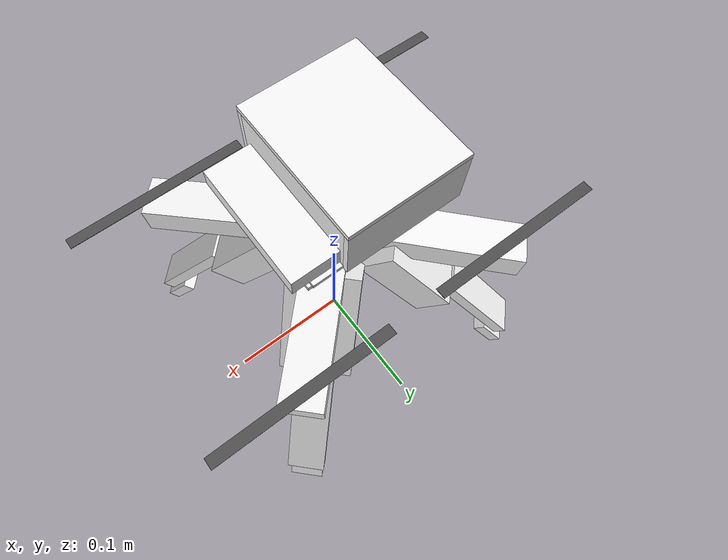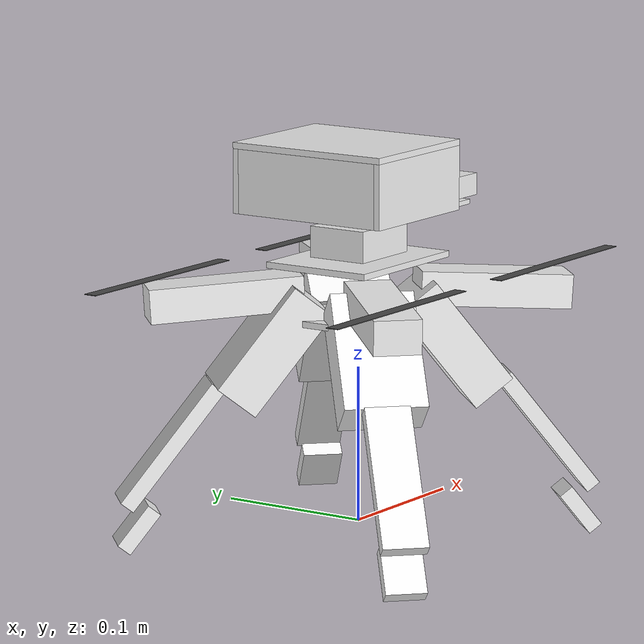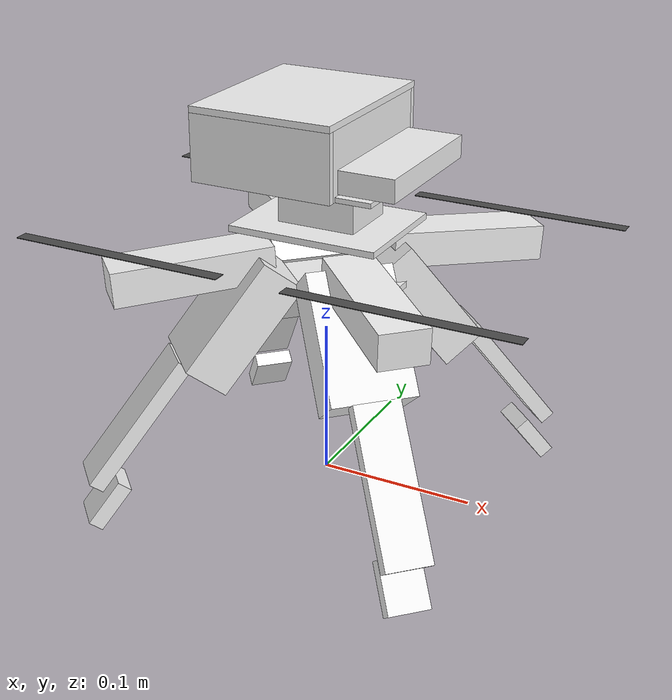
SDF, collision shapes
<?xml version="1.0" encoding="UTF-8"?>
<sdf version='1.9'>
  <model name='uav'>
    <include merge='true'>
      <uri>model://uav_base</uri>
    </include>
    <!-- Preserve the configured motor numbering; KM<0 maps to cw and KM>0 to ccw,
         while |KM|=0.05 maps to the Gazebo momentConstant below. -->
    <plugin filename="gz-sim-multicopter-motor-model-system" name="gz::sim::systems::MulticopterMotorModel">
      <jointName>uav_rotor_0_joint</jointName>
      <linkName>uav_rotor_0</linkName>
      <turningDirection>cw</turningDirection>
      <timeConstantUp>0.0125</timeConstantUp>
      <timeConstantDown>0.025</timeConstantDown>
      <maxRotVelocity>1000.0</maxRotVelocity>
      <motorConstant>8.54858e-06</motorConstant>
      <momentConstant>0.05</momentConstant>
      <commandSubTopic>command/motor_speed</commandSubTopic>
      <motorNumber>0</motorNumber>
      <rotorDragCoefficient>8.06428e-05</rotorDragCoefficient>
      <rollingMomentCoefficient>1e-06</rollingMomentCoefficient>
      <rotorVelocitySlowdownSim>10</rotorVelocitySlowdownSim>
      <motorType>velocity</motorType>
    </plugin>
    <plugin filename="gz-sim-multicopter-motor-model-system" name="gz::sim::systems::MulticopterMotorModel">
      <jointName>uav_rotor_1_joint</jointName>
      <linkName>uav_rotor_1</linkName>
      <turningDirection>cw</turningDirection>
      <timeConstantUp>0.0125</timeConstantUp>
      <timeConstantDown>0.025</timeConstantDown>
      <maxRotVelocity>1000.0</maxRotVelocity>
      <motorConstant>8.54858e-06</motorConstant>
      <momentConstant>0.05</momentConstant>
      <commandSubTopic>command/motor_speed</commandSubTopic>
      <motorNumber>1</motorNumber>
      <rotorDragCoefficient>8.06428e-05</rotorDragCoefficient>
      <rollingMomentCoefficient>1e-06</rollingMomentCoefficient>
      <rotorVelocitySlowdownSim>10</rotorVelocitySlowdownSim>
      <motorType>velocity</motorType>
    </plugin>
    <plugin filename="gz-sim-multicopter-motor-model-system" name="gz::sim::systems::MulticopterMotorModel">
      <jointName>uav_rotor_2_joint</jointName>
      <linkName>uav_rotor_2</linkName>
      <turningDirection>ccw</turningDirection>
      <timeConstantUp>0.0125</timeConstantUp>
      <timeConstantDown>0.025</timeConstantDown>
      <maxRotVelocity>1000.0</maxRotVelocity>
      <motorConstant>8.54858e-06</motorConstant>
      <momentConstant>0.05</momentConstant>
      <commandSubTopic>command/motor_speed</commandSubTopic>
      <motorNumber>2</motorNumber>
      <rotorDragCoefficient>8.06428e-05</rotorDragCoefficient>
      <rollingMomentCoefficient>1e-06</rollingMomentCoefficient>
      <rotorVelocitySlowdownSim>10</rotorVelocitySlowdownSim>
      <motorType>velocity</motorType>
    </plugin>
    <plugin filename="gz-sim-multicopter-motor-model-system" name="gz::sim::systems::MulticopterMotorModel">
      <jointName>uav_rotor_3_joint</jointName>
      <linkName>uav_rotor_3</linkName>
      <turningDirection>ccw</turningDirection>
      <timeConstantUp>0.0125</timeConstantUp>
      <timeConstantDown>0.025</timeConstantDown>
      <maxRotVelocity>1000.0</maxRotVelocity>
      <motorConstant>8.54858e-06</motorConstant>
      <momentConstant>0.05</momentConstant>
      <commandSubTopic>command/motor_speed</commandSubTopic>
      <motorNumber>3</motorNumber>
      <rotorDragCoefficient>8.06428e-05</rotorDragCoefficient>
      <rollingMomentCoefficient>1e-06</rollingMomentCoefficient>
      <rotorVelocitySlowdownSim>10</rotorVelocitySlowdownSim>
      <motorType>velocity</motorType>
    </plugin>
  </model>
</sdf>

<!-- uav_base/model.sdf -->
<sdf version='1.9'>
  <model name='uav_base'>
    <pose>0 0 0.12 0 0 0</pose>
    <self_collide>false</self_collide>
    <static>false</static>
    <link name="uav_base_link">
      <inertial>
        <mass>1.19196153846</mass>
        <inertia>
          <ixx>0.002926086497</ixx>
          <ixy>0</ixy>
          <ixz>0</ixz>
          <iyy>0.002922870097</iyy>
          <iyz>0</iyz>
          <izz>0.004866464599</izz>
        </inertia>
      </inertial>
      <gravity>true</gravity>
      <velocity_decay/>
      <visual name="uav_base_link_visual">
        <pose>0 0 0 0 0 0</pose>
        <geometry>
          <mesh>
            <scale>1 1 1</scale>
            <uri>model://uav_base/meshes/dj250_airframe.dae</uri>
          </mesh>
        </geometry>
      </visual>
      <visual name="motor_2306_base_0">
        <pose>0.09 -0.09 0.0325 0 0 -0.45</pose>
        <geometry>
          <mesh>
            <scale>1 1 1</scale>
            <uri>model://uav_base/meshes/motor_2306_base.dae</uri>
          </mesh>
        </geometry>
      </visual>
      <visual name="motor_2306_base_1">
        <pose>-0.09 0.09 0.0325 0 0 -0.45</pose>
        <geometry>
          <mesh>
            <scale>1 1 1</scale>
            <uri>model://uav_base/meshes/motor_2306_base.dae</uri>
          </mesh>
        </geometry>
      </visual>
      <visual name="motor_2306_base_2">
        <pose>0.09 0.09 0.0325 0 0 -0.45</pose>
        <geometry>
          <mesh>
            <scale>1 1 1</scale>
            <uri>model://uav_base/meshes/motor_2306_base.dae</uri>
          </mesh>
        </geometry>
      </visual>
      <visual name="motor_2306_base_3">
        <pose>-0.09 -0.09 0.0325 0 0 -0.45</pose>
        <geometry>
          <mesh>
            <scale>1 1 1</scale>
            <uri>model://uav_base/meshes/motor_2306_base.dae</uri>
          </mesh>
        </geometry>
      </visual>
      <visual name="flight_controller_front_marker">
        <pose>0.0235 0.0005 0.0215 1 0 1.57</pose>
        <cast_shadows>false</cast_shadows>
        <geometry>
          <plane>
            <normal>0 0 1</normal>
            <size>0.0065 0.0035</size>
          </plane>
        </geometry>
        <material>
          <ambient>0.85 0.85 0.85 1</ambient>
          <diffuse>0.95 0.95 0.95 1</diffuse>
          <specular>0.2 0.2 0.2 1</specular>
        </material>
      </visual>
      <visual name="flight_controller_top_marker">
        <pose>-0.0115 0 0.02575 0 0 -1.57</pose>
        <cast_shadows>false</cast_shadows>
        <geometry>
          <plane>
            <normal>0 0 1</normal>
            <size>0.0065 0.0035</size>
          </plane>
        </geometry>
        <material>
          <ambient>0.85 0.85 0.85 1</ambient>
          <diffuse>0.95 0.95 0.95 1</diffuse>
          <specular>0.2 0.2 0.2 1</specular>
        </material>
      </visual>
      <visual name="vehicle_top_marker">
        <pose>-0.015 0 0.02575 0 0 -1.57</pose>
        <cast_shadows>false</cast_shadows>
        <geometry>
          <plane>
            <normal>0 0 1</normal>
            <size>0.016 0.0017</size>
          </plane>
        </geometry>
        <material>
          <ambient>0.85 0.85 0.85 1</ambient>
          <diffuse>0.95 0.95 0.95 1</diffuse>
          <specular>0.2 0.2 0.2 1</specular>
        </material>
      </visual>
      <collision name="uav_base_link_collision_body_lower">
        <pose>0.00123 0.00075 0.01450 0 0 0</pose>
        <geometry>
          <box>
            <size>0.096 0.074 0.004</size>
          </box>
        </geometry>
        <surface>
          <contact>
            <ode>
              <min_depth>0.001</min_depth>
              <max_vel>0</max_vel>
            </ode>
          </contact>
          <friction>
            <ode/>
          </friction>
        </surface>
      </collision>
      <collision name="uav_base_link_collision_body_mid">
        <pose>0.00123 0.00075 0.04950 0 0 0</pose>
        <geometry>
          <box>
            <size>0.096 0.074 0.004</size>
          </box>
        </geometry>
        <surface>
          <contact>
            <ode>
              <min_depth>0.001</min_depth>
              <max_vel>0</max_vel>
            </ode>
          </contact>
          <friction>
            <ode/>
          </friction>
        </surface>
      </collision>
      <collision name="uav_base_link_collision_body_top">
        <pose>0.00123 0.00075 0.08400 0 0 0</pose>
        <geometry>
          <box>
            <size>0.104 0.100 0.003</size>
          </box>
        </geometry>
        <surface>
          <contact>
            <ode>
              <min_depth>0.001</min_depth>
              <max_vel>0</max_vel>
            </ode>
          </contact>
          <friction>
            <ode/>
          </friction>
        </surface>
      </collision>
      <collision name="uav_base_link_collision_body_core">
        <pose>0.00250 0.00118 0.06250 0 0 0</pose>
        <geometry>
          <box>
            <size>0.050 0.040 0.020</size>
          </box>
        </geometry>
        <surface>
          <contact>
            <ode>
              <min_depth>0.001</min_depth>
              <max_vel>0</max_vel>
            </ode>
          </contact>
          <friction>
            <ode/>
          </friction>
        </surface>
      </collision>
      <collision name="uav_base_link_collision_canopy_top">
        <pose>-0.01384 -0.00052 0.12550 0 0 0</pose>
        <geometry>
          <box>
            <size>0.090 0.110 0.004</size>
          </box>
        </geometry>
        <surface>
          <contact>
            <ode>
              <min_depth>0.001</min_depth>
              <max_vel>0</max_vel>
            </ode>
          </contact>
          <friction>
            <ode/>
          </friction>
        </surface>
      </collision>
      <collision name="uav_base_link_collision_canopy_left">
        <pose>-0.01384 0.05248 0.10300 0 0 0</pose>
        <geometry>
          <box>
            <size>0.090 0.004 0.041</size>
          </box>
        </geometry>
        <surface>
          <contact>
            <ode>
              <min_depth>0.001</min_depth>
              <max_vel>0</max_vel>
            </ode>
          </contact>
          <friction>
            <ode/>
          </friction>
        </surface>
      </collision>
      <collision name="uav_base_link_collision_canopy_right">
        <pose>-0.01384 -0.05352 0.10300 0 0 0</pose>
        <geometry>
          <box>
            <size>0.090 0.004 0.041</size>
          </box>
        </geometry>
        <surface>
          <contact>
            <ode>
              <min_depth>0.001</min_depth>
              <max_vel>0</max_vel>
            </ode>
          </contact>
          <friction>
            <ode/>
          </friction>
        </surface>
      </collision>
      <collision name="uav_base_link_collision_canopy_front">
        <pose>0.02916 -0.00052 0.10300 0 0 0</pose>
        <geometry>
          <box>
            <size>0.004 0.102 0.041</size>
          </box>
        </geometry>
        <surface>
          <contact>
            <ode>
              <min_depth>0.001</min_depth>
              <max_vel>0</max_vel>
            </ode>
          </contact>
          <friction>
            <ode/>
          </friction>
        </surface>
      </collision>
      <collision name="uav_base_link_collision_canopy_rear">
        <pose>-0.05684 -0.00052 0.10300 0 0 0</pose>
        <geometry>
          <box>
            <size>0.004 0.102 0.041</size>
          </box>
        </geometry>
        <surface>
          <contact>
            <ode>
              <min_depth>0.001</min_depth>
              <max_vel>0</max_vel>
            </ode>
          </contact>
          <friction>
            <ode/>
          </friction>
        </surface>
      </collision>
      <collision name="uav_base_link_collision_body_front_bridge">
        <pose>0.04702 0.00075 0.09332 0 0 -1.571</pose>
        <geometry>
          <box>
            <size>0.094 0.038 0.014</size>
          </box>
        </geometry>
        <surface>
          <contact>
            <ode>
              <min_depth>0.001</min_depth>
              <max_vel>0</max_vel>
            </ode>
          </contact>
          <friction>
            <ode/>
          </friction>
        </surface>
      </collision>
      <collision name="uav_base_link_collision_arm_front_left">
        <pose>0.06297 0.06099 0.02936 0 0.058 0.785</pose>
        <geometry>
          <box>
            <size>0.098 0.030 0.022</size>
          </box>
        </geometry>
        <surface>
          <contact>
            <ode>
              <min_depth>0.001</min_depth>
              <max_vel>0</max_vel>
            </ode>
          </contact>
          <friction>
            <ode/>
          </friction>
        </surface>
      </collision>
      <collision name="uav_base_link_collision_arm_rear_left">
        <pose>-0.06043 0.06102 0.02936 0 0.058 2.356</pose>
        <geometry>
          <box>
            <size>0.098 0.030 0.022</size>
          </box>
        </geometry>
        <surface>
          <contact>
            <ode>
              <min_depth>0.001</min_depth>
              <max_vel>0</max_vel>
            </ode>
          </contact>
          <friction>
            <ode/>
          </friction>
        </surface>
      </collision>
      <collision name="uav_base_link_collision_arm_rear_right">
        <pose>-0.06047 -0.05895 0.02936 0 0.058 -2.356</pose>
        <geometry>
          <box>
            <size>0.098 0.030 0.022</size>
          </box>
        </geometry>
        <surface>
          <contact>
            <ode>
              <min_depth>0.001</min_depth>
              <max_vel>0</max_vel>
            </ode>
          </contact>
          <friction>
            <ode/>
          </friction>
        </surface>
      </collision>
      <collision name="uav_base_link_collision_arm_front_right">
        <pose>0.06174 -0.06122 0.02936 0 0.058 -0.785</pose>
        <geometry>
          <box>
            <size>0.098 0.030 0.022</size>
          </box>
        </geometry>
        <surface>
          <contact>
            <ode>
              <min_depth>0.001</min_depth>
              <max_vel>0</max_vel>
            </ode>
          </contact>
          <friction>
            <ode/>
          </friction>
        </surface>
      </collision>
      <collision name="uav_base_link_collision_leg_front_left_upper">
        <pose>0.04159 0.04045 -0.00324 0 0.906 0.785</pose>
        <geometry>
          <box>
            <size>0.080 0.053 0.030</size>
          </box>
        </geometry>
        <surface>
          <contact>
            <ode>
              <min_depth>0.001</min_depth>
              <max_vel>0</max_vel>
            </ode>
          </contact>
          <friction>
            <ode/>
          </friction>
        </surface>
      </collision>
      <collision name="uav_base_link_collision_leg_front_left_mid">
        <pose>0.08659 0.08545 -0.06441 0 0.906 0.785</pose>
        <geometry>
          <box>
            <size>0.095 0.029 0.010</size>
          </box>
        </geometry>
        <surface>
          <contact>
            <ode>
              <min_depth>0.001</min_depth>
              <max_vel>0</max_vel>
            </ode>
          </contact>
          <friction>
            <ode/>
          </friction>
        </surface>
      </collision>
      <collision name="uav_base_link_collision_leg_front_left_foot">
        <pose>0.10177 0.10063 -0.11708 0 0.906 0.785</pose>
        <geometry>
          <box>
            <size>0.032 0.026 0.010</size>
          </box>
        </geometry>
        <surface>
          <contact>
            <ode>
              <min_depth>0.001</min_depth>
              <max_vel>0</max_vel>
            </ode>
          </contact>
          <friction>
            <ode/>
          </friction>
        </surface>
      </collision>
      <collision name="uav_base_link_collision_leg_front_right_upper">
        <pose>0.04101 -0.04131 -0.00324 0 0.906 -0.785</pose>
        <geometry>
          <box>
            <size>0.080 0.053 0.030</size>
          </box>
        </geometry>
        <surface>
          <contact>
            <ode>
              <min_depth>0.001</min_depth>
              <max_vel>0</max_vel>
            </ode>
          </contact>
          <friction>
            <ode/>
          </friction>
        </surface>
      </collision>
      <collision name="uav_base_link_collision_leg_front_right_mid">
        <pose>0.08601 -0.08631 -0.06441 0 0.906 -0.785</pose>
        <geometry>
          <box>
            <size>0.095 0.029 0.010</size>
          </box>
        </geometry>
        <surface>
          <contact>
            <ode>
              <min_depth>0.001</min_depth>
              <max_vel>0</max_vel>
            </ode>
          </contact>
          <friction>
            <ode/>
          </friction>
        </surface>
      </collision>
      <collision name="uav_base_link_collision_leg_front_right_foot">
        <pose>0.10119 -0.10149 -0.11708 0 0.906 -0.785</pose>
        <geometry>
          <box>
            <size>0.032 0.026 0.010</size>
          </box>
        </geometry>
        <surface>
          <contact>
            <ode>
              <min_depth>0.001</min_depth>
              <max_vel>0</max_vel>
            </ode>
          </contact>
          <friction>
            <ode/>
          </friction>
        </surface>
      </collision>
      <collision name="uav_base_link_collision_leg_rear_right_upper">
        <pose>-0.04159 -0.04138 -0.00324 0 0.906 -2.356</pose>
        <geometry>
          <box>
            <size>0.080 0.053 0.030</size>
          </box>
        </geometry>
        <surface>
          <contact>
            <ode>
              <min_depth>0.001</min_depth>
              <max_vel>0</max_vel>
            </ode>
          </contact>
          <friction>
            <ode/>
          </friction>
        </surface>
      </collision>
      <collision name="uav_base_link_collision_leg_rear_right_mid">
        <pose>-0.08659 -0.08638 -0.06441 0 0.906 -2.356</pose>
        <geometry>
          <box>
            <size>0.095 0.029 0.010</size>
          </box>
        </geometry>
        <surface>
          <contact>
            <ode>
              <min_depth>0.001</min_depth>
              <max_vel>0</max_vel>
            </ode>
          </contact>
          <friction>
            <ode/>
          </friction>
        </surface>
      </collision>
      <collision name="uav_base_link_collision_leg_rear_right_foot">
        <pose>-0.10177 -0.10156 -0.11708 0 0.906 -2.356</pose>
        <geometry>
          <box>
            <size>0.032 0.026 0.010</size>
          </box>
        </geometry>
        <surface>
          <contact>
            <ode>
              <min_depth>0.001</min_depth>
              <max_vel>0</max_vel>
            </ode>
          </contact>
          <friction>
            <ode/>
          </friction>
        </surface>
      </collision>
      <collision name="uav_base_link_collision_leg_rear_left_upper">
        <pose>-0.04010 0.04138 -0.00324 0 0.906 2.356</pose>
        <geometry>
          <box>
            <size>0.080 0.053 0.030</size>
          </box>
        </geometry>
        <surface>
          <contact>
            <ode>
              <min_depth>0.001</min_depth>
              <max_vel>0</max_vel>
            </ode>
          </contact>
          <friction>
            <ode/>
          </friction>
        </surface>
      </collision>
      <collision name="uav_base_link_collision_leg_rear_left_mid">
        <pose>-0.08511 0.08638 -0.06441 0 0.906 2.356</pose>
        <geometry>
          <box>
            <size>0.095 0.029 0.010</size>
          </box>
        </geometry>
        <surface>
          <contact>
            <ode>
              <min_depth>0.001</min_depth>
              <max_vel>0</max_vel>
            </ode>
          </contact>
          <friction>
            <ode/>
          </friction>
        </surface>
      </collision>
      <collision name="uav_base_link_collision_leg_rear_left_foot">
        <pose>-0.10028 0.10156 -0.11708 0 0.906 2.356</pose>
        <geometry>
          <box>
            <size>0.032 0.026 0.010</size>
          </box>
        </geometry>
        <surface>
          <contact>
            <ode>
              <min_depth>0.001</min_depth>
              <max_vel>0</max_vel>
            </ode>
          </contact>
          <friction>
            <ode/>
          </friction>
        </surface>
      </collision>
      <sensor name="uav_air_pressure_sensor" type="air_pressure">
        <always_on>1</always_on>
        <update_rate>50</update_rate>
        <air_pressure>
          <pressure>
            <noise type="gaussian">
              <mean>0</mean>
              <stddev>0.01</stddev>
            </noise>
          </pressure>
        </air_pressure>
      </sensor>
      <sensor name="uav_imu_sensor" type="imu">
        <always_on>1</always_on>
        <update_rate>250</update_rate>
        <imu>
          <angular_velocity>
            <x>
              <noise type="gaussian">
                <mean>0</mean>
                <stddev>0.00018665</stddev>
                <dynamic_bias_stddev>3.8785e-05</dynamic_bias_stddev>
                <dynamic_bias_correlation_time>1000</dynamic_bias_correlation_time>
              </noise>
            </x>
            <y>
              <noise type="gaussian">
                <mean>0</mean>
                <stddev>0.00018665</stddev>
                <dynamic_bias_stddev>3.8785e-05</dynamic_bias_stddev>
                <dynamic_bias_correlation_time>1000</dynamic_bias_correlation_time>
              </noise>
            </y>
            <z>
              <noise type="gaussian">
                <mean>0</mean>
                <stddev>0.00018665</stddev>
                <dynamic_bias_stddev>3.8785e-05</dynamic_bias_stddev>
                <dynamic_bias_correlation_time>1000</dynamic_bias_correlation_time>
              </noise>
            </z>
          </angular_velocity>
          <linear_acceleration>
            <x>
              <noise type="gaussian">
                <mean>0</mean>
                <stddev>0.00186</stddev>
                <dynamic_bias_stddev>0.006</dynamic_bias_stddev>
                <dynamic_bias_correlation_time>300</dynamic_bias_correlation_time>
              </noise>
            </x>
            <y>
              <noise type="gaussian">
                <mean>0</mean>
                <stddev>0.00186</stddev>
                <dynamic_bias_stddev>0.006</dynamic_bias_stddev>
                <dynamic_bias_correlation_time>300</dynamic_bias_correlation_time>
              </noise>
            </y>
            <z>
              <noise type="gaussian">
                <mean>0</mean>
                <stddev>0.00186</stddev>
                <dynamic_bias_stddev>0.006</dynamic_bias_stddev>
                <dynamic_bias_correlation_time>300</dynamic_bias_correlation_time>
              </noise>
            </z>
          </linear_acceleration>
        </imu>
      </sensor>
      <sensor name="uav_navsat_sensor" type="navsat">
        <always_on>1</always_on>
        <update_rate>30</update_rate>
      </sensor>
      <visual name="optical_flow_module_visual">
        <pose>0.005 0.05 0.0123 0 0 0</pose>
        <geometry>
          <box>
            <size>0.030 0.015 0.005</size>
          </box>
        </geometry>
        <material>
          <ambient>0.04 0.04 0.04 1</ambient>
          <diffuse>0.08 0.08 0.08 1</diffuse>
          <specular>0.15 0.15 0.15 1</specular>
        </material>
      </visual>
      <visual name="optical_flow_module_lens_window">
        <pose>0.012 0.05 0.0095 0 0 0</pose>
        <geometry>
          <box>
            <size>0.008 0.008 0.0008</size>
          </box>
        </geometry>
        <material>
          <ambient>0.02 0.03 0.05 1</ambient>
          <diffuse>0.04 0.06 0.08 1</diffuse>
          <specular>0.25 0.25 0.25 1</specular>
        </material>
      </visual>
      <visual name="optical_flow_module_range_window">
        <pose>-0.008 0.05 0.0095 0 0 0</pose>
        <geometry>
          <cylinder>
            <radius>0.0025</radius>
            <length>0.0008</length>
          </cylinder>
        </geometry>
        <material>
          <ambient>0.08 0.08 0.08 1</ambient>
          <diffuse>0.12 0.12 0.12 1</diffuse>
          <specular>0.20 0.20 0.20 1</specular>
        </material>
      </visual>
      <sensor name="uav_optical_flow_camera" type="camera">
        <always_on>1</always_on>
        <update_rate>30</update_rate>
        <pose>0.005 0.05 0.0098 0 1.570796327 0</pose>
        <camera>
          <horizontal_fov>0.25</horizontal_fov>
          <image>
            <width>64</width>
            <height>64</height>
            <format>R8G8B8</format>
          </image>
          <clip>
            <near>0.03</near>
            <far>20.0</far>
          </clip>
        </camera>
        <visualize>false</visualize>
      </sensor>
      <sensor name="uav_optical_flow_range" type="gpu_lidar">
        <always_on>1</always_on>
        <update_rate>30</update_rate>
        <pose>0.005 0.05 0.0098 0 -1.570796327 0</pose>
        <lidar>
          <scan>
            <horizontal>
              <samples>1</samples>
              <resolution>1</resolution>
              <min_angle>0.0</min_angle>
              <max_angle>0.0</max_angle>
            </horizontal>
            <vertical>
              <samples>1</samples>
              <resolution>1</resolution>
              <min_angle>0.0</min_angle>
              <max_angle>0.0</max_angle>
            </vertical>
          </scan>
          <range>
            <min>0.08</min>
            <max>8.0</max>
            <resolution>0.01</resolution>
          </range>
        </lidar>
        <visualize>false</visualize>
      </sensor>
      <visual name="uav_mono_camera_visual">
        <pose>0.0903 0 0.0098 0 1.570796327 0</pose>
        <geometry>
          <box>
            <size>0.008 0.018 0.014</size>
          </box>
        </geometry>
        <material>
          <ambient>0.05 0.05 0.05 1</ambient>
          <diffuse>0.08 0.08 0.08 1</diffuse>
          <specular>0.2 0.2 0.2 1</specular>
        </material>
      </visual>
      <sensor name="uav_mono_camera" type="camera">
        <always_on>1</always_on>
        <update_rate>60</update_rate>
        <pose>0.0903 0 0.0098 0 1.570796327 0</pose>
        <camera>
          <horizontal_fov>1.3962634</horizontal_fov>
          <image>
            <width>1280</width>
            <height>720</height>
            <format>L8</format>
          </image>
          <clip>
            <near>0.05</near>
            <far>100</far>
          </clip>
        </camera>
        <visualize>false</visualize>
      </sensor>
      <visual name="uav_stereo_depth_camera_visual">
        <pose>0.0452 0 0.0918 0 0 0</pose>
        <geometry>
          <mesh>
            <scale>1 1 1</scale>
            <uri>model://uav_base/meshes/camera_orbbec_gemini336_link.stl</uri>
          </mesh>
        </geometry>
        <material>
          <ambient>0.05 0.05 0.05 1</ambient>
          <diffuse>0.08 0.08 0.08 1</diffuse>
          <specular>0.2 0.2 0.2 1</specular>
        </material>
      </visual>
      <sensor name="uav_stereo_depth_camera_rgb" type="camera">
        <always_on>1</always_on>
        <update_rate>30</update_rate>
        <pose>0.0503 0 0.1043 0 0 0</pose>
        <camera>
          <horizontal_fov>1.500983157</horizontal_fov>
          <image>
            <width>1920</width>
            <height>1080</height>
            <format>R8G8B8</format>
          </image>
          <clip>
            <near>0.10</near>
            <far>20.0</far>
          </clip>
        </camera>
        <visualize>false</visualize>
      </sensor>
      <sensor name="uav_stereo_depth_camera_depth" type="depth_camera">
        <always_on>1</always_on>
        <update_rate>30</update_rate>
        <pose>0.0503 0 0.1043 0 0 0</pose>
        <camera>
          <horizontal_fov>1.570796327</horizontal_fov>
          <image>
            <width>1280</width>
            <height>800</height>
            <format>R_FLOAT32</format>
          </image>
          <clip>
            <near>0.10</near>
            <far>20.0</far>
          </clip>
        </camera>
        <visualize>false</visualize>
      </sensor>
    </link>
    <!-- Rotor links keep the configured ordering after FRD->FLU conversion.
         A -Z spin axis in FRD maps to a +Z spin axis in Gazebo FLU. -->
    <link name="uav_rotor_0">
      <gravity>true</gravity>
      <self_collide>false</self_collide>
      <velocity_decay/>
      <pose>0.09 -0.09 0.033 0 0 0</pose>
      <inertial>
          <mass>0.002009615385</mass>
          <inertia>
            <ixx>0.00000001202</ixx>
            <iyy>0.00000081612</iyy>
            <izz>0.000000828081</izz>
          </inertia>
        </inertial>
      <visual name="uav_rotor_0_visual">
        <pose>0 0 0.01 0 0 0</pose>
        <geometry>
          <mesh>
            <scale>0.001 0.001 0.001</scale>
            <uri>model://uav_base/meshes/propeller_5x3.stl</uri>
          </mesh>
        </geometry>
        <material>
          <script>
            <name>Gazebo/DarkGrey</name>
            <uri>file://media/materials/scripts/gazebo.material</uri>
          </script>
        </material>
      </visual>
      <visual name="uav_rotor_0_visual_motor_bell">
        <pose>0 0 0 0 0 0</pose>
        <geometry>
          <mesh>
            <scale>0.5 0.5 0.5</scale>
            <uri>model://uav_base/meshes/motor_2306_bell.dae</uri>
          </mesh>
        </geometry>
      </visual>
      <collision name="uav_rotor_0_collision">
        <pose>0 0 0.01 0 0 0</pose>
        <geometry>
          <box>
            <size>0.139615384615 0.008461538462 0.000423076923</size>
          </box>
        </geometry>
        <surface>
          <contact>
            <ode>
              <min_depth>0.001</min_depth>
              <max_vel>0</max_vel>
            </ode>
          </contact>
          <friction>
            <ode/>
          </friction>
        </surface>
      </collision>
    </link>
    <joint name="uav_rotor_0_joint" type="revolute">
      <parent>uav_base_link</parent>
      <child>uav_rotor_0</child>
      <axis>
        <xyz>0 0 1</xyz>
        <limit>
          <lower>-1e+16</lower>
          <upper>1e+16</upper>
        </limit>
        <dynamics>
          <spring_reference>0</spring_reference>
          <spring_stiffness>0</spring_stiffness>
        </dynamics>
      </axis>
    </joint>
    <link name="uav_rotor_1">
      <gravity>true</gravity>
      <self_collide>false</self_collide>
      <velocity_decay/>
      <pose>-0.09 0.09 0.033 0 0 0</pose>
      <inertial>
          <mass>0.002009615385</mass>
          <inertia>
            <ixx>0.00000001202</ixx>
            <iyy>0.00000081612</iyy>
            <izz>0.000000828081</izz>
          </inertia>
        </inertial>
      <visual name="uav_rotor_1_visual">
        <pose>0 0 0.01 0 0 0</pose>
        <geometry>
          <mesh>
            <scale>0.001 0.001 0.001</scale>
            <uri>model://uav_base/meshes/propeller_5x3.stl</uri>
          </mesh>
        </geometry>
        <material>
          <script>
            <name>Gazebo/DarkGrey</name>
            <uri>file://media/materials/scripts/gazebo.material</uri>
          </script>
        </material>
      </visual>
      <visual name="uav_rotor_1_visual_motor_bell">
        <pose>0 0 0 0 0 0</pose>
        <geometry>
          <mesh>
            <scale>0.5 0.5 0.5</scale>
            <uri>model://uav_base/meshes/motor_2306_bell.dae</uri>
          </mesh>
        </geometry>
      </visual>
      <collision name="uav_rotor_1_collision">
        <pose>0 0 0.01 0 0 0</pose>
        <geometry>
          <box>
            <size>0.139615384615 0.008461538462 0.000423076923</size>
          </box>
        </geometry>
        <surface>
          <contact>
            <ode>
              <min_depth>0.001</min_depth>
              <max_vel>0</max_vel>
            </ode>
          </contact>
          <friction>
            <ode/>
          </friction>
        </surface>
      </collision>
    </link>
    <joint name="uav_rotor_1_joint" type="revolute">
      <parent>uav_base_link</parent>
      <child>uav_rotor_1</child>
      <axis>
        <xyz>0 0 1</xyz>
        <limit>
          <lower>-1e+16</lower>
          <upper>1e+16</upper>
        </limit>
        <dynamics>
          <spring_reference>0</spring_reference>
          <spring_stiffness>0</spring_stiffness>
        </dynamics>
      </axis>
    </joint>
    <link name="uav_rotor_2">
      <gravity>true</gravity>
      <self_collide>false</self_collide>
      <velocity_decay/>
      <pose>0.09 0.09 0.033 0 0 0</pose>
      <inertial>
          <mass>0.002009615385</mass>
          <inertia>
            <ixx>0.00000001202</ixx>
            <iyy>0.00000081612</iyy>
            <izz>0.000000828081</izz>
          </inertia>
        </inertial>
      <visual name="uav_rotor_2_visual">
        <pose>0 0 0.01 0 0 0</pose>
        <geometry>
          <mesh>
            <scale>0.001 0.001 0.001</scale>
            <uri>model://uav_base/meshes/propeller_5x3.stl</uri>
          </mesh>
        </geometry>
        <material>
          <script>
            <name>Gazebo/DarkGrey</name>
            <uri>file://media/materials/scripts/gazebo.material</uri>
          </script>
        </material>
      </visual>
      <visual name="uav_rotor_2_visual_motor_bell">
        <pose>0 0 0 0 0 0</pose>
        <geometry>
          <mesh>
            <scale>0.5 0.5 0.5</scale>
            <uri>model://uav_base/meshes/motor_2306_bell.dae</uri>
          </mesh>
        </geometry>
      </visual>
      <collision name="uav_rotor_2_collision">
        <pose>0 0 0.01 0 0 0</pose>
        <geometry>
          <box>
            <size>0.139615384615 0.008461538462 0.000423076923</size>
          </box>
        </geometry>
        <surface>
          <contact>
            <ode>
              <min_depth>0.001</min_depth>
              <max_vel>0</max_vel>
            </ode>
          </contact>
          <friction>
            <ode/>
          </friction>
        </surface>
      </collision>
    </link>
    <joint name="uav_rotor_2_joint" type="revolute">
      <parent>uav_base_link</parent>
      <child>uav_rotor_2</child>
      <axis>
        <xyz>0 0 1</xyz>
        <limit>
          <lower>-1e+16</lower>
          <upper>1e+16</upper>
        </limit>
        <dynamics>
          <spring_reference>0</spring_reference>
          <spring_stiffness>0</spring_stiffness>
        </dynamics>
      </axis>
    </joint>
    <link name="uav_rotor_3">
      <gravity>true</gravity>
      <self_collide>false</self_collide>
      <velocity_decay/>
      <pose>-0.09 -0.09 0.033 0 0 0</pose>
      <inertial>
          <mass>0.002009615385</mass>
          <inertia>
            <ixx>0.00000001202</ixx>
            <iyy>0.00000081612</iyy>
            <izz>0.000000828081</izz>
          </inertia>
        </inertial>
      <visual name="uav_rotor_3_visual">
        <pose>0 0 0.01 0 0 0</pose>
        <geometry>
          <mesh>
            <scale>0.001 0.001 0.001</scale>
            <uri>model://uav_base/meshes/propeller_5x3.stl</uri>
          </mesh>
        </geometry>
        <material>
          <script>
            <name>Gazebo/DarkGrey</name>
            <uri>file://media/materials/scripts/gazebo.material</uri>
          </script>
        </material>
      </visual>
      <visual name="uav_rotor_3_visual_motor_bell">
        <pose>0 0 0 0 0 0</pose>
        <geometry>
          <mesh>
            <scale>0.5 0.5 0.5</scale>
            <uri>model://uav_base/meshes/motor_2306_bell.dae</uri>
          </mesh>
        </geometry>
      </visual>
      <collision name="uav_rotor_3_collision">
        <pose>0 0 0.01 0 0 0</pose>
        <geometry>
          <box>
            <size>0.139615384615 0.008461538462 0.000423076923</size>
          </box>
        </geometry>
        <surface>
          <contact>
            <ode>
              <min_depth>0.001</min_depth>
              <max_vel>0</max_vel>
            </ode>
          </contact>
          <friction>
            <ode/>
          </friction>
        </surface>
      </collision>
    </link>
    <joint name="uav_rotor_3_joint" type="revolute">
      <parent>uav_base_link</parent>
      <child>uav_rotor_3</child>
      <axis>
        <xyz>0 0 1</xyz>
        <limit>
          <lower>-1e+16</lower>
          <upper>1e+16</upper>
        </limit>
        <dynamics>
          <spring_reference>0</spring_reference>
          <spring_stiffness>0</spring_stiffness>
        </dynamics>
      </axis>
    </joint>
  </model>
</sdf>
